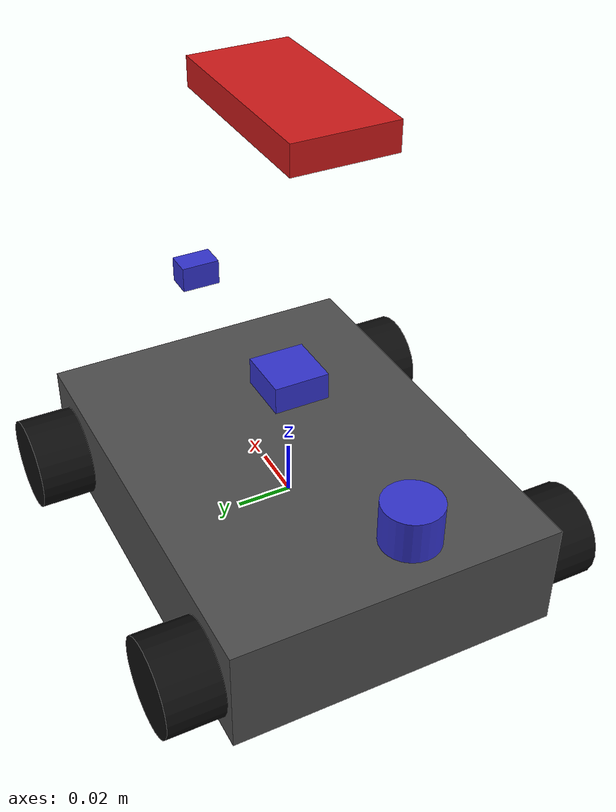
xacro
<?xml version="1.0"?>
<robot xmlns:xacro="http://www.ros.org/wiki/xacro" name="dasn_bot">

  <!-- ==================== Materials ==================== -->
  <material name="dark_gray">
    <color rgba="0.3 0.3 0.3 1.0"/>
  </material>
  <material name="black">
    <color rgba="0.05 0.05 0.05 1.0"/>
  </material>
  <material name="blue">
    <color rgba="0.2 0.2 0.8 1.0"/>
  </material>
  <material name="red">
    <color rgba="0.8 0.1 0.1 1.0"/>
  </material>

  <!-- ==================== Properties ==================== -->
  <xacro:property name="chassis_length" value="0.16"/>
  <xacro:property name="chassis_width"  value="0.12"/>
  <xacro:property name="chassis_height" value="0.04"/>

  <xacro:property name="wheel_radius" value="0.017"/>
  <xacro:property name="wheel_width"  value="0.02"/>

  <!-- Wheel X/Y offsets from base_link center -->
  <xacro:property name="wheel_x_front" value="0.06"/>
  <xacro:property name="wheel_x_rear"  value="-0.06"/>
  <xacro:property name="wheel_y_offset" value="0.07"/>
  <!-- Wheels sit at the bottom of the chassis -->
  <xacro:property name="wheel_z_offset" value="-0.003"/>

  <!-- ==================== Wheel Macro ==================== -->
  <xacro:macro name="wheel" params="name x y">
    <link name="${name}_wheel_link">
      <visual>
        <geometry>
          <cylinder radius="${wheel_radius}" length="${wheel_width}"/>
        </geometry>
        <material name="black"/>
      </visual>
      <collision>
        <geometry>
          <cylinder radius="${wheel_radius}" length="${wheel_width}"/>
        </geometry>
      </collision>
      <inertial>
        <mass value="0.02"/>
        <inertia ixx="1.0e-6" ixy="0" ixz="0"
                 iyy="1.0e-6" iyz="0"
                 izz="1.0e-6"/>
      </inertial>
    </link>

    <joint name="${name}_wheel_joint" type="continuous">
      <parent link="base_link"/>
      <child link="${name}_wheel_link"/>
      <origin xyz="${x} ${y} ${wheel_z_offset}" rpy="${-pi/2} 0 0"/>
      <axis xyz="0 0 1"/>
    </joint>
  </xacro:macro>

  <!-- ==================== Base Footprint ==================== -->
  <link name="base_footprint"/>

  <!-- ==================== Base Link (Chassis) ==================== -->
  <link name="base_link">
    <visual>
      <geometry>
        <box size="${chassis_length} ${chassis_width} ${chassis_height}"/>
      </geometry>
      <material name="dark_gray"/>
    </visual>
    <collision>
      <geometry>
        <box size="${chassis_length} ${chassis_width} ${chassis_height}"/>
      </geometry>
    </collision>
    <inertial>
      <mass value="0.5"/>
      <inertia ixx="3.0e-4" ixy="0" ixz="0"
               iyy="4.0e-4" iyz="0"
               izz="5.0e-4"/>
    </inertial>
  </link>

  <joint name="base_footprint_joint" type="fixed">
    <parent link="base_link"/>
    <child link="base_footprint"/>
    <origin xyz="0 0 -0.019" rpy="0 0 0"/>
  </joint>

  <!-- ==================== Wheels ==================== -->
  <xacro:wheel name="front_left"  x="${wheel_x_front}" y="${wheel_y_offset}"/>
  <xacro:wheel name="front_right" x="${wheel_x_front}" y="${-wheel_y_offset}"/>
  <xacro:wheel name="rear_left"   x="${wheel_x_rear}"  y="${wheel_y_offset}"/>
  <xacro:wheel name="rear_right"  x="${wheel_x_rear}"  y="${-wheel_y_offset}"/>

  <!-- ==================== IMU Link ==================== -->
  <link name="imu_link">
    <visual>
      <geometry>
        <box size="0.02 0.02 0.01"/>
      </geometry>
      <material name="blue"/>
    </visual>
    <collision>
      <geometry>
        <box size="0.02 0.02 0.01"/>
      </geometry>
    </collision>
    <inertial>
      <mass value="0.005"/>
      <inertia ixx="1.0e-7" ixy="0" ixz="0"
               iyy="1.0e-7" iyz="0"
               izz="1.0e-7"/>
    </inertial>
  </link>

  <joint name="imu_joint" type="fixed">
    <parent link="base_link"/>
    <child link="imu_link"/>
    <origin xyz="0 0 0.05" rpy="0 0 0"/>
  </joint>

  <!-- ==================== ToF Front Sensor ==================== -->
  <link name="tof_front">
    <visual>
      <geometry>
        <box size="0.01 0.015 0.01"/>
      </geometry>
      <material name="blue"/>
    </visual>
    <collision>
      <geometry>
        <box size="0.01 0.015 0.01"/>
      </geometry>
    </collision>
    <inertial>
      <mass value="0.003"/>
      <inertia ixx="1.0e-7" ixy="0" ixz="0"
               iyy="1.0e-7" iyz="0"
               izz="1.0e-7"/>
    </inertial>
  </link>

  <joint name="tof_front_joint" type="fixed">
    <parent link="base_link"/>
    <child link="tof_front"/>
    <origin xyz="0.08 0 0.05" rpy="0 0 0"/>
  </joint>

  <!-- ==================== Sonar Rear Sensor ==================== -->
  <link name="sonar_rear">
    <visual>
      <geometry>
        <cylinder radius="0.01" length="0.015"/>
      </geometry>
      <material name="blue"/>
    </visual>
    <collision>
      <geometry>
        <cylinder radius="0.01" length="0.015"/>
      </geometry>
    </collision>
    <inertial>
      <mass value="0.005"/>
      <inertia ixx="1.0e-7" ixy="0" ixz="0"
               iyy="1.0e-7" iyz="0"
               izz="1.0e-7"/>
    </inertial>
  </link>

  <joint name="sonar_rear_joint" type="fixed">
    <parent link="base_link"/>
    <child link="sonar_rear"/>
    <origin xyz="-0.08 0 0.05" rpy="0 0 ${pi}"/>
  </joint>

  <!-- ==================== Camera Link (Phone Mount) ==================== -->
  <link name="camera_link">
    <visual>
      <geometry>
        <box size="0.07 0.035 0.01"/>
      </geometry>
      <material name="red"/>
    </visual>
    <collision>
      <geometry>
        <box size="0.07 0.035 0.01"/>
      </geometry>
    </collision>
    <inertial>
      <mass value="0.05"/>
      <inertia ixx="1.0e-5" ixy="0" ixz="0"
               iyy="1.0e-5" iyz="0"
               izz="1.0e-5"/>
    </inertial>
  </link>

  <joint name="camera_joint" type="fixed">
    <parent link="base_link"/>
    <child link="camera_link"/>
    <origin xyz="0 0 0.15" rpy="0 0 0"/>
  </joint>

</robot>
